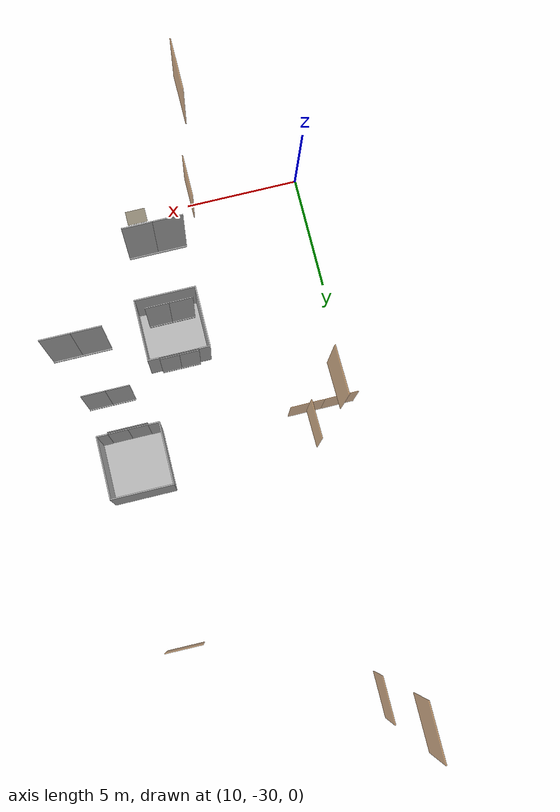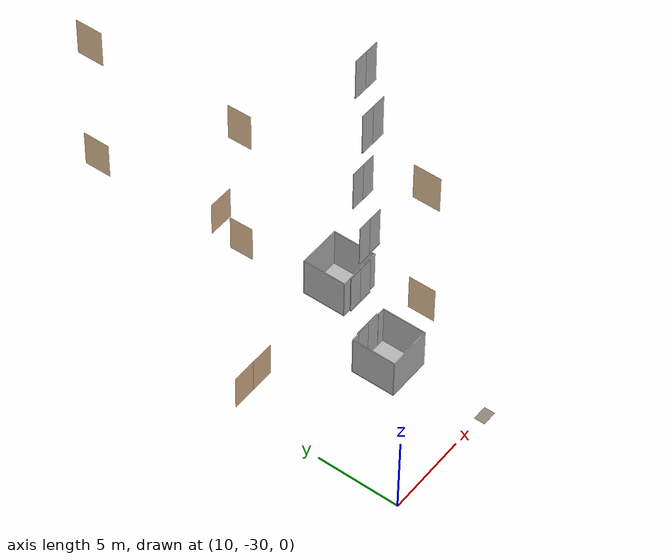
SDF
<sdf version="1.7">
 <world name="sim_world">
  <model name="L1_door2">
   <pose>11.515053553551752 -19.600764056030513 0.0 0 0 -3.1369488994516814</pose>
   <link name="right">
    <pose>0.7374085791900343 0 1.11 0 0 0</pose>
    <visual name="right_visual">
     <geometry><box><size>1.4648171583800687 0.03 2.2</size></box></geometry>
     <material>
      <ambient>0.5 0.25 0 0.6</ambient>
      <diffuse>0.5 0.25 0 0.6</diffuse>
      <pbr><metal><metalness>0.0</metalness></metal></pbr>
     </material>
    </visual>
    <collision name="right_collision">
     <geometry><box><size>1.4648171583800687 0.03 2.2</size></box></geometry>
     <surface><contact><collide_bitmask>0x02</collide_bitmask></contact></surface>
    </collision>
    <inertial>
     <mass>50.0</mass>
     <inertia><ixx>20.17041666666667</ixx><iyy>29.107038781186084</iyy><izz>8.944122114519415</izz></inertia>
    </inertial>
   </link>
   <joint name="right_joint" type="prismatic">
    <parent>world</parent>
    <child>right</child>
    <axis>
     <xyz>1 0 0</xyz>
     <limit><lower>0.0</lower><upper>1.4748171583800687</upper><effort>500.0</effort></limit>
    </axis>
   </joint>
   <link name="left">
    <pose>-0.7374085791900343 0 1.11 0 0 0</pose>
    <visual name="left_visual">
     <geometry><box><size>1.4648171583800687 0.03 2.2</size></box></geometry>
     <material>
      <ambient>0.5 0.25 0 0.6</ambient>
      <diffuse>0.5 0.25 0 0.6</diffuse>
      <pbr><metal><metalness>0.0</metalness></metal></pbr>
     </material>
    </visual>
    <collision name="left_collision">
     <geometry><box><size>1.4648171583800687 0.03 2.2</size></box></geometry>
     <surface><contact><collide_bitmask>0x02</collide_bitmask></contact></surface>
    </collision>
    <inertial>
     <mass>50.0</mass>
     <inertia><ixx>20.17041666666667</ixx><iyy>29.107038781186084</iyy><izz>8.944122114519415</izz></inertia>
    </inertial>
   </link>
   <joint name="left_joint" type="prismatic">
    <parent>world</parent>
    <child>left</child>
    <axis>
     <xyz>1 0 0</xyz>
     <limit><lower>-1.4748171583800687</lower><upper>0.0</upper><effort>500.0</effort></limit>
    </axis>
   </joint>
   <plugin name="register_component" filename="libregister_component.so">
    <component name="Door">
     <v_max_door>0.2</v_max_door>
     <a_max_door>0.2</a_max_door>
     <a_nom_door>0.08</a_nom_door>
     <dx_min_door>0.001</dx_min_door>
     <f_max_door>100.0</f_max_door>
     <ros_interface>true</ros_interface>
     <door name="L1_door2" type="DoubleSlidingDoor" left_joint_name="left_joint" right_joint_name="right_joint"/>
    </component>
   </plugin>
  </model>
  <model name="L1_door4">
   <pose>19.549120677562087 -11.10939551168469 0.0 0 0 -0.009497018345977264</pose>
   <link name="right">
    <pose>0 0 1.11 0 0 0</pose>
    <visual name="right_visual">
     <geometry><box><size>1.5905993122484277 0.03 2.2</size></box></geometry>
     <material>
      <ambient>0.5 0.25 0 0.6</ambient>
      <diffuse>0.5 0.25 0 0.6</diffuse>
      <pbr><metal><metalness>0.0</metalness></metal></pbr>
     </material>
    </visual>
    <collision name="right_collision">
     <geometry><box><size>1.5905993122484277 0.03 2.2</size></box></geometry>
     <surface><contact><collide_bitmask>0x02</collide_bitmask></contact></surface>
    </collision>
    <inertial>
     <mass>50.0</mass>
     <inertia><ixx>20.17041666666667</ixx><iyy>30.70835905052155</iyy><izz>10.545442383854882</izz></inertia>
    </inertial>
   </link>
   <joint name="right_joint" type="revolute">
    <parent>world</parent>
    <child>right</child>
    <axis><xyz>0 0 1</xyz><limit><lower>0</lower><upper>1.57</upper></limit></axis>
    <pose>0.8002996561242138 0 0 0 0 0</pose>
   </joint>
   <plugin name="register_component" filename="libregister_component.so">
    <component name="Door">
     <v_max_door>0.5</v_max_door>
     <a_max_door>0.3</a_max_door>
     <a_nom_door>0.15</a_nom_door>
     <dx_min_door>0.01</dx_min_door>
     <f_max_door>500.0</f_max_door>
     <ros_interface>true</ros_interface>
     <door name="L1_door4" type="SwingDoor" left_joint_name="empty_joint" right_joint_name="right_joint"/>
    </component>
   </plugin>
  </model>
  <model name="L2_door9">
   <pose>13.018848337594756 -17.76158217016259 8.0 0 0 1.5874688733681936</pose>
   <link name="right">
    <pose>0 0 1.11 0 0 0</pose>
    <visual name="right_visual">
     <geometry><box><size>1.382945881897145 0.03 2.2</size></box></geometry>
     <material>
      <ambient>0.5 0.25 0 0.6</ambient>
      <diffuse>0.5 0.25 0 0.6</diffuse>
      <pbr><metal><metalness>0.0</metalness></metal></pbr>
     </material>
    </visual>
    <collision name="right_collision">
     <geometry><box><size>1.382945881897145 0.03 2.2</size></box></geometry>
     <surface><contact><collide_bitmask>0x02</collide_bitmask></contact></surface>
    </collision>
    <inertial>
     <mass>50.0</mass>
     <inertia><ixx>20.17041666666667</ixx><iyy>28.13558046773447</iyy><izz>7.9726638010677995</izz></inertia>
    </inertial>
   </link>
   <joint name="right_joint" type="revolute">
    <parent>world</parent>
    <child>right</child>
    <axis><xyz>0 0 -1</xyz><limit><lower>0</lower><upper>1.57</upper></limit></axis>
    <pose>0.6964729409485725 0 0 0 0 0</pose>
   </joint>
   <plugin name="register_component" filename="libregister_component.so">
    <component name="Door">
     <v_max_door>0.5</v_max_door>
     <a_max_door>0.3</a_max_door>
     <a_nom_door>0.15</a_nom_door>
     <dx_min_door>0.01</dx_min_door>
     <f_max_door>500.0</f_max_door>
     <ros_interface>true</ros_interface>
     <door name="L2_door9" type="SwingDoor" left_joint_name="empty_joint" right_joint_name="right_joint"/>
    </component>
   </plugin>
  </model>
  <model name="L2_door11">
   <pose>13.070832545372092 -8.29507317951618 8.0 0 0 1.571612558028263</pose>
   <link name="right">
    <pose>0 0 1.11 0 0 0</pose>
    <visual name="right_visual">
     <geometry><box><size>1.5950330216253457 0.03 2.2</size></box></geometry>
     <material>
      <ambient>0.5 0.25 0 0.6</ambient>
      <diffuse>0.5 0.25 0 0.6</diffuse>
      <pbr><metal><metalness>0.0</metalness></metal></pbr>
     </material>
    </visual>
    <collision name="right_collision">
     <geometry><box><size>1.5950330216253457 0.03 2.2</size></box></geometry>
     <surface><contact><collide_bitmask>0x02</collide_bitmask></contact></surface>
    </collision>
    <inertial>
     <mass>50.0</mass>
     <inertia><ixx>20.17041666666667</ixx><iyy>30.767209750313672</iyy><izz>10.604293083647002</izz></inertia>
    </inertial>
   </link>
   <joint name="right_joint" type="revolute">
    <parent>world</parent>
    <child>right</child>
    <axis><xyz>0 0 -1</xyz><limit><lower>0</lower><upper>1.57</upper></limit></axis>
    <pose>0.8025165108126728 0 0 0 0 0</pose>
   </joint>
   <plugin name="register_component" filename="libregister_component.so">
    <component name="Door">
     <v_max_door>0.5</v_max_door>
     <a_max_door>0.3</a_max_door>
     <a_nom_door>0.15</a_nom_door>
     <dx_min_door>0.01</dx_min_door>
     <f_max_door>500.0</f_max_door>
     <ros_interface>true</ros_interface>
     <door name="L2_door11" type="SwingDoor" left_joint_name="empty_joint" right_joint_name="right_joint"/>
    </component>
   </plugin>
  </model>
  <model name="L2_door12">
   <pose>15.28470442617677 -27.2761317707633 8.0 0 0 1.571612558028262</pose>
   <link name="right">
    <pose>0 0 1.11 0 0 0</pose>
    <visual name="right_visual">
     <geometry><box><size>1.5658659299508506 0.03 2.2</size></box></geometry>
     <material>
      <ambient>0.5 0.25 0 0.6</ambient>
      <diffuse>0.5 0.25 0 0.6</diffuse>
      <pbr><metal><metalness>0.0</metalness></metal></pbr>
     </material>
    </visual>
    <collision name="right_collision">
     <geometry><box><size>1.5658659299508506 0.03 2.2</size></box></geometry>
     <surface><contact><collide_bitmask>0x02</collide_bitmask></contact></surface>
    </collision>
    <inertial>
     <mass>50.0</mass>
     <inertia><ixx>20.17041666666667</ixx><iyy>30.38306712742018</iyy><izz>10.22015046075351</izz></inertia>
    </inertial>
   </link>
   <joint name="right_joint" type="revolute">
    <parent>world</parent>
    <child>right</child>
    <axis><xyz>0 0 1</xyz><limit><lower>0</lower><upper>1.57</upper></limit></axis>
    <pose>0.7879329649754253 0 0 0 0 0</pose>
   </joint>
   <plugin name="register_component" filename="libregister_component.so">
    <component name="Door">
     <v_max_door>0.5</v_max_door>
     <a_max_door>0.3</a_max_door>
     <a_nom_door>0.15</a_nom_door>
     <dx_min_door>0.01</dx_min_door>
     <f_max_door>500.0</f_max_door>
     <ros_interface>true</ros_interface>
     <door name="L2_door12" type="SwingDoor" left_joint_name="empty_joint" right_joint_name="right_joint"/>
    </component>
   </plugin>
  </model>
  <model name="L3_door9">
   <pose>13.018848337594756 -17.76158217016259 16.0 0 0 1.5874688733681936</pose>
   <link name="right">
    <pose>0 0 1.11 0 0 0</pose>
    <visual name="right_visual">
     <geometry><box><size>1.382945881897145 0.03 2.2</size></box></geometry>
     <material>
      <ambient>0.5 0.25 0 0.6</ambient>
      <diffuse>0.5 0.25 0 0.6</diffuse>
      <pbr><metal><metalness>0.0</metalness></metal></pbr>
     </material>
    </visual>
    <collision name="right_collision">
     <geometry><box><size>1.382945881897145 0.03 2.2</size></box></geometry>
     <surface><contact><collide_bitmask>0x02</collide_bitmask></contact></surface>
    </collision>
    <inertial>
     <mass>50.0</mass>
     <inertia><ixx>20.17041666666667</ixx><iyy>28.13558046773447</iyy><izz>7.9726638010677995</izz></inertia>
    </inertial>
   </link>
   <joint name="right_joint" type="revolute">
    <parent>world</parent>
    <child>right</child>
    <axis><xyz>0 0 -1</xyz><limit><lower>0</lower><upper>1.57</upper></limit></axis>
    <pose>0.6964729409485725 0 0 0 0 0</pose>
   </joint>
   <plugin name="register_component" filename="libregister_component.so">
    <component name="Door">
     <v_max_door>0.5</v_max_door>
     <a_max_door>0.3</a_max_door>
     <a_nom_door>0.15</a_nom_door>
     <dx_min_door>0.01</dx_min_door>
     <f_max_door>500.0</f_max_door>
     <ros_interface>true</ros_interface>
     <door name="L3_door9" type="SwingDoor" left_joint_name="empty_joint" right_joint_name="right_joint"/>
    </component>
   </plugin>
  </model>
  <model name="L3_door11">
   <pose>13.070832545372092 -8.29507317951618 16.0 0 0 1.571612558028263</pose>
   <link name="right">
    <pose>0 0 1.11 0 0 0</pose>
    <visual name="right_visual">
     <geometry><box><size>1.5950330216253457 0.03 2.2</size></box></geometry>
     <material>
      <ambient>0.5 0.25 0 0.6</ambient>
      <diffuse>0.5 0.25 0 0.6</diffuse>
      <pbr><metal><metalness>0.0</metalness></metal></pbr>
     </material>
    </visual>
    <collision name="right_collision">
     <geometry><box><size>1.5950330216253457 0.03 2.2</size></box></geometry>
     <surface><contact><collide_bitmask>0x02</collide_bitmask></contact></surface>
    </collision>
    <inertial>
     <mass>50.0</mass>
     <inertia><ixx>20.17041666666667</ixx><iyy>30.767209750313672</iyy><izz>10.604293083647002</izz></inertia>
    </inertial>
   </link>
   <joint name="right_joint" type="revolute">
    <parent>world</parent>
    <child>right</child>
    <axis><xyz>0 0 -1</xyz><limit><lower>0</lower><upper>1.57</upper></limit></axis>
    <pose>0.8025165108126728 0 0 0 0 0</pose>
   </joint>
   <plugin name="register_component" filename="libregister_component.so">
    <component name="Door">
     <v_max_door>0.5</v_max_door>
     <a_max_door>0.3</a_max_door>
     <a_nom_door>0.15</a_nom_door>
     <dx_min_door>0.01</dx_min_door>
     <f_max_door>500.0</f_max_door>
     <ros_interface>true</ros_interface>
     <door name="L3_door11" type="SwingDoor" left_joint_name="empty_joint" right_joint_name="right_joint"/>
    </component>
   </plugin>
  </model>
  <model name="L3_door12">
   <pose>15.28470442617677 -27.2761317707633 16.0 0 0 1.571612558028262</pose>
   <link name="right">
    <pose>0 0 1.11 0 0 0</pose>
    <visual name="right_visual">
     <geometry><box><size>1.5658659299508506 0.03 2.2</size></box></geometry>
     <material>
      <ambient>0.5 0.25 0 0.6</ambient>
      <diffuse>0.5 0.25 0 0.6</diffuse>
      <pbr><metal><metalness>0.0</metalness></metal></pbr>
     </material>
    </visual>
    <collision name="right_collision">
     <geometry><box><size>1.5658659299508506 0.03 2.2</size></box></geometry>
     <surface><contact><collide_bitmask>0x02</collide_bitmask></contact></surface>
    </collision>
    <inertial>
     <mass>50.0</mass>
     <inertia><ixx>20.17041666666667</ixx><iyy>30.38306712742018</iyy><izz>10.22015046075351</izz></inertia>
    </inertial>
   </link>
   <joint name="right_joint" type="revolute">
    <parent>world</parent>
    <child>right</child>
    <axis><xyz>0 0 1</xyz><limit><lower>0</lower><upper>1.57</upper></limit></axis>
    <pose>0.7879329649754253 0 0 0 0 0</pose>
   </joint>
   <plugin name="register_component" filename="libregister_component.so">
    <component name="Door">
     <v_max_door>0.5</v_max_door>
     <a_max_door>0.3</a_max_door>
     <a_nom_door>0.15</a_nom_door>
     <dx_min_door>0.01</dx_min_door>
     <f_max_door>500.0</f_max_door>
     <ros_interface>true</ros_interface>
     <door name="L3_door12" type="SwingDoor" left_joint_name="empty_joint" right_joint_name="right_joint"/>
    </component>
   </plugin>
  </model>
  <model name="ShaftDoor_Lift1_L1_lift1_door">
   <pose>19.766468308668816 -20.331265422387034 0.0 0 0 0.0</pose>
   <link name="right_door">
    <pose>0.425 0 1.25 0 0 0</pose>
    <visual name="right_door_visual">
     <geometry><box><size>0.85 0.03 2.5</size></box></geometry>
     <material>
      <ambient>0.5 0.5 0.5 1</ambient>
      <diffuse>0.7 0.7 0.7 1</diffuse>
      <specular>0.6 0.6 0.6 1</specular>
      <emissive>0.1 0.1 0.1 1</emissive>
     </material>
    </visual>
   </link>
   <link name="left_door">
    <pose>-0.425 0 1.25 0 0 0</pose>
    <visual name="left_door_visual">
     <geometry><box><size>0.85 0.03 2.5</size></box></geometry>
     <material>
      <ambient>0.5 0.5 0.5 1</ambient>
      <diffuse>0.7 0.7 0.7 1</diffuse>
      <specular>0.6 0.6 0.6 1</specular>
      <emissive>0.1 0.1 0.1 1</emissive>
     </material>
    </visual>
   </link>
   <joint name="right_joint" type="prismatic">
    <parent>world</parent>
    <child>right_door</child>
    <axis><xyz>1 0 0</xyz><limit><lower>0</lower><upper>0.85</upper></limit></axis>
   </joint>
   <joint name="left_joint" type="prismatic">
    <parent>world</parent>
    <child>left_door</child>
    <axis><xyz>1 0 0</xyz><limit><lower>-0.85</lower><upper>0</upper></limit></axis>
   </joint>
   <link name="ramp">
    <pose>0 0 -0.025 0 0 0</pose>
    <visual name="ramp_visual">
     <geometry><box><size>1.7 0.1 0.05</size></box></geometry>
     <material>
      <ambient>0.5 0.5 0.5 1</ambient>
      <diffuse>0.7 0.7 0.7 1</diffuse>
      <specular>0.6 0.6 0.6 1</specular>
      <emissive>0.1 0.1 0.1 1</emissive>
     </material>
    </visual>
   </link>
   <joint name="ramp_joint" type="fixed"><parent>world</parent><child>ramp</child></joint>
   <plugin name="register_component" filename="libregister_component.so">
    <component name="Door">
     <v_max_door>0.3</v_max_door>
     <a_max_door>0.2</a_max_door>
     <a_nom_door>0.1</a_nom_door>
     <dx_min_door>0.0001</dx_min_door>
     <f_max_door>35.0</f_max_door>
     <door left_joint_name="left_joint" name="ShaftDoor_Lift1_L1_lift1_door" right_joint_name="right_joint" type="DoubleSlidingDoor"/>
    </component>
   </plugin>
  </model>
  <model name="ShaftDoor_Lift1_L2_lift1_door">
   <pose>19.766468308668816 -20.331265422387034 8.0 0 0 0.0</pose>
   <link name="right_door">
    <pose>0.425 0 1.25 0 0 0</pose>
    <visual name="right_door_visual">
     <geometry><box><size>0.85 0.03 2.5</size></box></geometry>
     <material>
      <ambient>0.5 0.5 0.5 1</ambient>
      <diffuse>0.7 0.7 0.7 1</diffuse>
      <specular>0.6 0.6 0.6 1</specular>
      <emissive>0.1 0.1 0.1 1</emissive>
     </material>
    </visual>
   </link>
   <link name="left_door">
    <pose>-0.425 0 1.25 0 0 0</pose>
    <visual name="left_door_visual">
     <geometry><box><size>0.85 0.03 2.5</size></box></geometry>
     <material>
      <ambient>0.5 0.5 0.5 1</ambient>
      <diffuse>0.7 0.7 0.7 1</diffuse>
      <specular>0.6 0.6 0.6 1</specular>
      <emissive>0.1 0.1 0.1 1</emissive>
     </material>
    </visual>
   </link>
   <joint name="right_joint" type="prismatic">
    <parent>world</parent>
    <child>right_door</child>
    <axis><xyz>1 0 0</xyz><limit><lower>0</lower><upper>0.85</upper></limit></axis>
   </joint>
   <joint name="left_joint" type="prismatic">
    <parent>world</parent>
    <child>left_door</child>
    <axis><xyz>1 0 0</xyz><limit><lower>-0.85</lower><upper>0</upper></limit></axis>
   </joint>
   <link name="ramp">
    <pose>0 0 -0.025 0 0 0</pose>
    <visual name="ramp_visual">
     <geometry><box><size>1.7 0.1 0.05</size></box></geometry>
     <material>
      <ambient>0.5 0.5 0.5 1</ambient>
      <diffuse>0.7 0.7 0.7 1</diffuse>
      <specular>0.6 0.6 0.6 1</specular>
      <emissive>0.1 0.1 0.1 1</emissive>
     </material>
    </visual>
   </link>
   <joint name="ramp_joint" type="fixed"><parent>world</parent><child>ramp</child></joint>
   <plugin name="register_component" filename="libregister_component.so">
    <component name="Door">
     <v_max_door>0.3</v_max_door>
     <a_max_door>0.2</a_max_door>
     <a_nom_door>0.1</a_nom_door>
     <dx_min_door>0.0001</dx_min_door>
     <f_max_door>35.0</f_max_door>
     <door left_joint_name="left_joint" name="ShaftDoor_Lift1_L2_lift1_door" right_joint_name="right_joint" type="DoubleSlidingDoor"/>
    </component>
   </plugin>
  </model>
  <model name="ShaftDoor_Lift1_L3_lift1_door">
   <pose>19.766468308668816 -20.331265422387034 16.0 0 0 0.0</pose>
   <link name="right_door">
    <pose>0.425 0 1.25 0 0 0</pose>
    <visual name="right_door_visual">
     <geometry><box><size>0.85 0.03 2.5</size></box></geometry>
     <material>
      <ambient>0.5 0.5 0.5 1</ambient>
      <diffuse>0.7 0.7 0.7 1</diffuse>
      <specular>0.6 0.6 0.6 1</specular>
      <emissive>0.1 0.1 0.1 1</emissive>
     </material>
    </visual>
   </link>
   <link name="left_door">
    <pose>-0.425 0 1.25 0 0 0</pose>
    <visual name="left_door_visual">
     <geometry><box><size>0.85 0.03 2.5</size></box></geometry>
     <material>
      <ambient>0.5 0.5 0.5 1</ambient>
      <diffuse>0.7 0.7 0.7 1</diffuse>
      <specular>0.6 0.6 0.6 1</specular>
      <emissive>0.1 0.1 0.1 1</emissive>
     </material>
    </visual>
   </link>
   <joint name="right_joint" type="prismatic">
    <parent>world</parent>
    <child>right_door</child>
    <axis><xyz>1 0 0</xyz><limit><lower>0</lower><upper>0.85</upper></limit></axis>
   </joint>
   <joint name="left_joint" type="prismatic">
    <parent>world</parent>
    <child>left_door</child>
    <axis><xyz>1 0 0</xyz><limit><lower>-0.85</lower><upper>0</upper></limit></axis>
   </joint>
   <link name="ramp">
    <pose>0 0 -0.025 0 0 0</pose>
    <visual name="ramp_visual">
     <geometry><box><size>1.7 0.1 0.05</size></box></geometry>
     <material>
      <ambient>0.5 0.5 0.5 1</ambient>
      <diffuse>0.7 0.7 0.7 1</diffuse>
      <specular>0.6 0.6 0.6 1</specular>
      <emissive>0.1 0.1 0.1 1</emissive>
     </material>
    </visual>
   </link>
   <joint name="ramp_joint" type="fixed"><parent>world</parent><child>ramp</child></joint>
   <plugin name="register_component" filename="libregister_component.so">
    <component name="Door">
     <v_max_door>0.3</v_max_door>
     <a_max_door>0.2</a_max_door>
     <a_nom_door>0.1</a_nom_door>
     <dx_min_door>0.0001</dx_min_door>
     <f_max_door>35.0</f_max_door>
     <door left_joint_name="left_joint" name="ShaftDoor_Lift1_L3_lift1_door" right_joint_name="right_joint" type="DoubleSlidingDoor"/>
    </component>
   </plugin>
  </model>
  <model name="Lift1">
   <link name="platform">
    <inertial>
     <mass>1200</mass>
     <inertia><ixx>729.2500000000001</ixx><iyy>729.2500000000001</iyy><izz>1458.0000000000002</izz></inertia>
    </inertial>
    <visual name="floor_visual">
     <pose>0 0 -0.025 0 0 0</pose>
     <geometry><box><size>2.7 2.7 0.05</size></box></geometry>
     <material>
      <ambient>0.5 0.5 0.5 1</ambient>
      <diffuse>0.7 0.7 0.7 1</diffuse>
      <specular>0.6 0.6 0.6 1</specular>
      <emissive>0.1 0.1 0.1 1</emissive>
     </material>
    </visual>
    <collision name="floor_collision">
     <pose>0 0 -0.025 0 0 0</pose>
     <geometry><box><size>2.7 3.0 0.05</size></box></geometry>
     <surface><contact><collide_bitmask>0x01</collide_bitmask></contact></surface>
    </collision>
    <visual name="frontwall1_visual">
     <pose>0.0 1.3250000000000002 1.25 0 0 0</pose>
     <geometry><box><size>2.7 0.05 2.5</size></box></geometry>
     <material>
      <ambient>0.5 0.5 0.5 1</ambient>
      <diffuse>0.7 0.7 0.7 1</diffuse>
      <specular>0.6 0.6 0.6 1</specular>
      <emissive>0.1 0.1 0.1 1</emissive>
     </material>
    </visual>
    <visual name="backwall1_visual">
     <pose>-1.1 -1.3250000000000002 1.25 0 0 0</pose>
     <geometry><box><size>0.5000000000000001 0.05 2.5</size></box></geometry>
     <material>
      <ambient>0.5 0.5 0.5 1</ambient>
      <diffuse>0.7 0.7 0.7 1</diffuse>
      <specular>0.6 0.6 0.6 1</specular>
      <emissive>0.1 0.1 0.1 1</emissive>
     </material>
    </visual>
    <visual name="backwall2_visual">
     <pose>1.1 -1.3250000000000002 1.25 0 0 0</pose>
     <geometry><box><size>0.5000000000000001 0.05 2.5</size></box></geometry>
     <material>
      <ambient>0.5 0.5 0.5 1</ambient>
      <diffuse>0.7 0.7 0.7 1</diffuse>
      <specular>0.6 0.6 0.6 1</specular>
      <emissive>0.1 0.1 0.1 1</emissive>
     </material>
    </visual>
    <visual name="leftwall1_visual">
     <pose>-1.3250000000000002 0.0 1.25 0 0 1.5707963267948966</pose>
     <geometry><box><size>2.6 0.05 2.5</size></box></geometry>
     <material>
      <ambient>0.5 0.5 0.5 1</ambient>
      <diffuse>0.7 0.7 0.7 1</diffuse>
      <specular>0.6 0.6 0.6 1</specular>
      <emissive>0.1 0.1 0.1 1</emissive>
     </material>
    </visual>
    <visual name="rightwall1_visual">
     <pose>1.3250000000000002 0.0 1.25 0 0 1.5707963267948966</pose>
     <geometry><box><size>2.6 0.05 2.5</size></box></geometry>
     <material>
      <ambient>0.5 0.5 0.5 1</ambient>
      <diffuse>0.7 0.7 0.7 1</diffuse>
      <specular>0.6 0.6 0.6 1</specular>
      <emissive>0.1 0.1 0.1 1</emissive>
     </material>
    </visual>
   </link>
   <joint name="cabin_joint" type="prismatic">
    <parent>world</parent>
    <child>platform</child>
    <axis><xyz>0 0 1</xyz></axis>
   </joint>
   <model name="CabinDoor_Lift1_lift1_door">
    <pose>0.0 -1.3250000000000002 0 0 0 0.0</pose>
    <link name="right_door">
     <pose>0.425 0 1.25 0 0 0</pose>
     <visual name="right_door_visual">
      <geometry><box><size>0.85 0.03 2.5</size></box></geometry>
      <material>
       <ambient>0.5 0.5 0.5 1</ambient>
       <diffuse>0.7 0.7 0.7 1</diffuse>
       <specular>0.6 0.6 0.6 1</specular>
       <emissive>0.1 0.1 0.1 1</emissive>
      </material>
     </visual>
    </link>
    <link name="left_door">
     <pose>-0.425 0 1.25 0 0 0</pose>
     <visual name="left_door_visual">
      <geometry><box><size>0.85 0.03 2.5</size></box></geometry>
      <material>
       <ambient>0.5 0.5 0.5 1</ambient>
       <diffuse>0.7 0.7 0.7 1</diffuse>
       <specular>0.6 0.6 0.6 1</specular>
       <emissive>0.1 0.1 0.1 1</emissive>
      </material>
     </visual>
    </link>
    <plugin name="register_component" filename="libregister_component.so">
     <component name="Door">
      <v_max_door>0.3</v_max_door>
      <a_max_door>0.2</a_max_door>
      <a_nom_door>0.1</a_nom_door>
      <dx_min_door>0.0001</dx_min_door>
      <f_max_door>35.0</f_max_door>
      <door left_joint_name="CabinDoor_Lift1_lift1_door_left_joint" name="CabinDoor_Lift1_lift1_door" right_joint_name="CabinDoor_Lift1_lift1_door_right_joint" type="DoubleSlidingDoor"/>
     </component>
    </plugin>
   </model>
   <joint name="CabinDoor_Lift1_lift1_door_right_joint" type="prismatic">
    <parent>platform</parent>
    <child>CabinDoor_Lift1_lift1_door::right_door</child>
    <axis><xyz>1 0 0</xyz><limit><lower>0</lower><upper>0.85</upper></limit></axis>
   </joint>
   <joint name="CabinDoor_Lift1_lift1_door_left_joint" type="prismatic">
    <parent>platform</parent>
    <child>CabinDoor_Lift1_lift1_door::left_door</child>
    <axis><xyz>1 0 0</xyz><limit><lower>-0.85</lower><upper>0</upper></limit></axis>
   </joint>
   <plugin name="register_component" filename="libregister_component.so">
    <component name="Lift">
     <lift_name>Lift1</lift_name>
     <floor name="L1" elevation="0.0">
      <door_pair cabin_door="CabinDoor_Lift1_lift1_door" shaft_door="ShaftDoor_Lift1_L1_lift1_door"/>
     </floor>
     <floor name="L2" elevation="8.0">
      <door_pair cabin_door="CabinDoor_Lift1_lift1_door" shaft_door="ShaftDoor_Lift1_L2_lift1_door"/>
     </floor>
     <floor name="L3" elevation="16.0">
      <door_pair cabin_door="CabinDoor_Lift1_lift1_door" shaft_door="ShaftDoor_Lift1_L3_lift1_door"/>
     </floor>
     <initial_floor>L1</initial_floor>
     <v_max_cabin>2.0</v_max_cabin>
     <a_max_cabin>1.2</a_max_cabin>
     <a_nom_cabin>1.0</a_nom_cabin>
     <dx_min_cabin>0.001</dx_min_cabin>
     <f_max_cabin>25323.0</f_max_cabin>
     <cabin_joint_name>cabin_joint</cabin_joint_name>
    </component>
   </plugin>
   <pose>19.766468308668816 -18.931265422387035 0 0 0 0.0</pose>
  </model>
  <model name="ShaftDoor_Lift2_L1_lift2_door">
   <pose>16.982458687729547 -22.82088370217165 0.0 0 0 0.0</pose>
   <link name="right_door">
    <pose>0.425 0 1.25 0 0 0</pose>
    <visual name="right_door_visual">
     <geometry><box><size>0.85 0.03 2.5</size></box></geometry>
     <material>
      <ambient>0.5 0.5 0.5 1</ambient>
      <diffuse>0.7 0.7 0.7 1</diffuse>
      <specular>0.6 0.6 0.6 1</specular>
      <emissive>0.1 0.1 0.1 1</emissive>
     </material>
    </visual>
   </link>
   <link name="left_door">
    <pose>-0.425 0 1.25 0 0 0</pose>
    <visual name="left_door_visual">
     <geometry><box><size>0.85 0.03 2.5</size></box></geometry>
     <material>
      <ambient>0.5 0.5 0.5 1</ambient>
      <diffuse>0.7 0.7 0.7 1</diffuse>
      <specular>0.6 0.6 0.6 1</specular>
      <emissive>0.1 0.1 0.1 1</emissive>
     </material>
    </visual>
   </link>
   <joint name="right_joint" type="prismatic">
    <parent>world</parent>
    <child>right_door</child>
    <axis><xyz>1 0 0</xyz><limit><lower>0</lower><upper>0.85</upper></limit></axis>
   </joint>
   <joint name="left_joint" type="prismatic">
    <parent>world</parent>
    <child>left_door</child>
    <axis><xyz>1 0 0</xyz><limit><lower>-0.85</lower><upper>0</upper></limit></axis>
   </joint>
   <link name="ramp">
    <pose>0 0 -0.025 0 0 0</pose>
    <visual name="ramp_visual">
     <geometry><box><size>1.7 0.1 0.05</size></box></geometry>
     <material>
      <ambient>0.5 0.5 0.5 1</ambient>
      <diffuse>0.7 0.7 0.7 1</diffuse>
      <specular>0.6 0.6 0.6 1</specular>
      <emissive>0.1 0.1 0.1 1</emissive>
     </material>
    </visual>
   </link>
   <joint name="ramp_joint" type="fixed"><parent>world</parent><child>ramp</child></joint>
   <plugin name="register_component" filename="libregister_component.so">
    <component name="Door">
     <v_max_door>0.3</v_max_door>
     <a_max_door>0.2</a_max_door>
     <a_nom_door>0.1</a_nom_door>
     <dx_min_door>0.0001</dx_min_door>
     <f_max_door>35.0</f_max_door>
     <door left_joint_name="left_joint" name="ShaftDoor_Lift2_L1_lift2_door" right_joint_name="right_joint" type="DoubleSlidingDoor"/>
    </component>
   </plugin>
  </model>
  <model name="ShaftDoor_Lift2_L2_lift2_door">
   <pose>16.982458687729547 -22.82088370217165 8.0 0 0 0.0</pose>
   <link name="right_door">
    <pose>0.425 0 1.25 0 0 0</pose>
    <visual name="right_door_visual">
     <geometry><box><size>0.85 0.03 2.5</size></box></geometry>
     <material>
      <ambient>0.5 0.5 0.5 1</ambient>
      <diffuse>0.7 0.7 0.7 1</diffuse>
      <specular>0.6 0.6 0.6 1</specular>
      <emissive>0.1 0.1 0.1 1</emissive>
     </material>
    </visual>
   </link>
   <link name="left_door">
    <pose>-0.425 0 1.25 0 0 0</pose>
    <visual name="left_door_visual">
     <geometry><box><size>0.85 0.03 2.5</size></box></geometry>
     <material>
      <ambient>0.5 0.5 0.5 1</ambient>
      <diffuse>0.7 0.7 0.7 1</diffuse>
      <specular>0.6 0.6 0.6 1</specular>
      <emissive>0.1 0.1 0.1 1</emissive>
     </material>
    </visual>
   </link>
   <joint name="right_joint" type="prismatic">
    <parent>world</parent>
    <child>right_door</child>
    <axis><xyz>1 0 0</xyz><limit><lower>0</lower><upper>0.85</upper></limit></axis>
   </joint>
   <joint name="left_joint" type="prismatic">
    <parent>world</parent>
    <child>left_door</child>
    <axis><xyz>1 0 0</xyz><limit><lower>-0.85</lower><upper>0</upper></limit></axis>
   </joint>
   <link name="ramp">
    <pose>0 0 -0.025 0 0 0</pose>
    <visual name="ramp_visual">
     <geometry><box><size>1.7 0.1 0.05</size></box></geometry>
     <material>
      <ambient>0.5 0.5 0.5 1</ambient>
      <diffuse>0.7 0.7 0.7 1</diffuse>
      <specular>0.6 0.6 0.6 1</specular>
      <emissive>0.1 0.1 0.1 1</emissive>
     </material>
    </visual>
   </link>
   <joint name="ramp_joint" type="fixed"><parent>world</parent><child>ramp</child></joint>
   <plugin name="register_component" filename="libregister_component.so">
    <component name="Door">
     <v_max_door>0.3</v_max_door>
     <a_max_door>0.2</a_max_door>
     <a_nom_door>0.1</a_nom_door>
     <dx_min_door>0.0001</dx_min_door>
     <f_max_door>35.0</f_max_door>
     <door left_joint_name="left_joint" name="ShaftDoor_Lift2_L2_lift2_door" right_joint_name="right_joint" type="DoubleSlidingDoor"/>
    </component>
   </plugin>
  </model>
  <model name="ShaftDoor_Lift2_L3_lift2_door">
   <pose>16.982458687729547 -22.82088370217165 16.0 0 0 0.0</pose>
   <link name="right_door">
    <pose>0.425 0 1.25 0 0 0</pose>
    <visual name="right_door_visual">
     <geometry><box><size>0.85 0.03 2.5</size></box></geometry>
     <material>
      <ambient>0.5 0.5 0.5 1</ambient>
      <diffuse>0.7 0.7 0.7 1</diffuse>
      <specular>0.6 0.6 0.6 1</specular>
      <emissive>0.1 0.1 0.1 1</emissive>
     </material>
    </visual>
   </link>
   <link name="left_door">
    <pose>-0.425 0 1.25 0 0 0</pose>
    <visual name="left_door_visual">
     <geometry><box><size>0.85 0.03 2.5</size></box></geometry>
     <material>
      <ambient>0.5 0.5 0.5 1</ambient>
      <diffuse>0.7 0.7 0.7 1</diffuse>
      <specular>0.6 0.6 0.6 1</specular>
      <emissive>0.1 0.1 0.1 1</emissive>
     </material>
    </visual>
   </link>
   <joint name="right_joint" type="prismatic">
    <parent>world</parent>
    <child>right_door</child>
    <axis><xyz>1 0 0</xyz><limit><lower>0</lower><upper>0.85</upper></limit></axis>
   </joint>
   <joint name="left_joint" type="prismatic">
    <parent>world</parent>
    <child>left_door</child>
    <axis><xyz>1 0 0</xyz><limit><lower>-0.85</lower><upper>0</upper></limit></axis>
   </joint>
   <link name="ramp">
    <pose>0 0 -0.025 0 0 0</pose>
    <visual name="ramp_visual">
     <geometry><box><size>1.7 0.1 0.05</size></box></geometry>
     <material>
      <ambient>0.5 0.5 0.5 1</ambient>
      <diffuse>0.7 0.7 0.7 1</diffuse>
      <specular>0.6 0.6 0.6 1</specular>
      <emissive>0.1 0.1 0.1 1</emissive>
     </material>
    </visual>
   </link>
   <joint name="ramp_joint" type="fixed"><parent>world</parent><child>ramp</child></joint>
   <plugin name="register_component" filename="libregister_component.so">
    <component name="Door">
     <v_max_door>0.3</v_max_door>
     <a_max_door>0.2</a_max_door>
     <a_nom_door>0.1</a_nom_door>
     <dx_min_door>0.0001</dx_min_door>
     <f_max_door>35.0</f_max_door>
     <door left_joint_name="left_joint" name="ShaftDoor_Lift2_L3_lift2_door" right_joint_name="right_joint" type="DoubleSlidingDoor"/>
    </component>
   </plugin>
  </model>
  <model name="Lift2">
   <link name="platform">
    <inertial>
     <mass>1200</mass>
     <inertia><ixx>729.2500000000001</ixx><iyy>729.2500000000001</iyy><izz>1458.0000000000002</izz></inertia>
    </inertial>
    <visual name="floor_visual">
     <pose>0 0 -0.025 0 0 0</pose>
     <geometry><box><size>2.7 2.7 0.05</size></box></geometry>
     <material>
      <ambient>0.5 0.5 0.5 1</ambient>
      <diffuse>0.7 0.7 0.7 1</diffuse>
      <specular>0.6 0.6 0.6 1</specular>
      <emissive>0.1 0.1 0.1 1</emissive>
     </material>
    </visual>
    <collision name="floor_collision">
     <pose>0 0 -0.025 0 0 0</pose>
     <geometry><box><size>2.7 3.0 0.05</size></box></geometry>
     <surface><contact><collide_bitmask>0x01</collide_bitmask></contact></surface>
    </collision>
    <visual name="frontwall1_visual">
     <pose>-1.1 1.3250000000000002 1.25 0 0 0</pose>
     <geometry><box><size>0.5000000000000001 0.05 2.5</size></box></geometry>
     <material>
      <ambient>0.5 0.5 0.5 1</ambient>
      <diffuse>0.7 0.7 0.7 1</diffuse>
      <specular>0.6 0.6 0.6 1</specular>
      <emissive>0.1 0.1 0.1 1</emissive>
     </material>
    </visual>
    <visual name="frontwall2_visual">
     <pose>1.1 1.3250000000000002 1.25 0 0 0</pose>
     <geometry><box><size>0.5000000000000001 0.05 2.5</size></box></geometry>
     <material>
      <ambient>0.5 0.5 0.5 1</ambient>
      <diffuse>0.7 0.7 0.7 1</diffuse>
      <specular>0.6 0.6 0.6 1</specular>
      <emissive>0.1 0.1 0.1 1</emissive>
     </material>
    </visual>
    <visual name="backwall1_visual">
     <pose>0.0 -1.3250000000000002 1.25 0 0 0</pose>
     <geometry><box><size>2.7 0.05 2.5</size></box></geometry>
     <material>
      <ambient>0.5 0.5 0.5 1</ambient>
      <diffuse>0.7 0.7 0.7 1</diffuse>
      <specular>0.6 0.6 0.6 1</specular>
      <emissive>0.1 0.1 0.1 1</emissive>
     </material>
    </visual>
    <visual name="leftwall1_visual">
     <pose>-1.3250000000000002 0.0 1.25 0 0 1.5707963267948966</pose>
     <geometry><box><size>2.6 0.05 2.5</size></box></geometry>
     <material>
      <ambient>0.5 0.5 0.5 1</ambient>
      <diffuse>0.7 0.7 0.7 1</diffuse>
      <specular>0.6 0.6 0.6 1</specular>
      <emissive>0.1 0.1 0.1 1</emissive>
     </material>
    </visual>
    <visual name="rightwall1_visual">
     <pose>1.3250000000000002 0.0 1.25 0 0 1.5707963267948966</pose>
     <geometry><box><size>2.6 0.05 2.5</size></box></geometry>
     <material>
      <ambient>0.5 0.5 0.5 1</ambient>
      <diffuse>0.7 0.7 0.7 1</diffuse>
      <specular>0.6 0.6 0.6 1</specular>
      <emissive>0.1 0.1 0.1 1</emissive>
     </material>
    </visual>
   </link>
   <joint name="cabin_joint" type="prismatic">
    <parent>world</parent>
    <child>platform</child>
    <axis><xyz>0 0 1</xyz></axis>
   </joint>
   <model name="CabinDoor_Lift2_lift2_door">
    <pose>0.0 1.3250000000000002 0 0 0 0.0</pose>
    <link name="right_door">
     <pose>0.425 0 1.25 0 0 0</pose>
     <visual name="right_door_visual">
      <geometry><box><size>0.85 0.03 2.5</size></box></geometry>
      <material>
       <ambient>0.5 0.5 0.5 1</ambient>
       <diffuse>0.7 0.7 0.7 1</diffuse>
       <specular>0.6 0.6 0.6 1</specular>
       <emissive>0.1 0.1 0.1 1</emissive>
      </material>
     </visual>
    </link>
    <link name="left_door">
     <pose>-0.425 0 1.25 0 0 0</pose>
     <visual name="left_door_visual">
      <geometry><box><size>0.85 0.03 2.5</size></box></geometry>
      <material>
       <ambient>0.5 0.5 0.5 1</ambient>
       <diffuse>0.7 0.7 0.7 1</diffuse>
       <specular>0.6 0.6 0.6 1</specular>
       <emissive>0.1 0.1 0.1 1</emissive>
      </material>
     </visual>
    </link>
    <plugin name="register_component" filename="libregister_component.so">
     <component name="Door">
      <v_max_door>0.3</v_max_door>
      <a_max_door>0.2</a_max_door>
      <a_nom_door>0.1</a_nom_door>
      <dx_min_door>0.0001</dx_min_door>
      <f_max_door>35.0</f_max_door>
      <door left_joint_name="CabinDoor_Lift2_lift2_door_left_joint" name="CabinDoor_Lift2_lift2_door" right_joint_name="CabinDoor_Lift2_lift2_door_right_joint" type="DoubleSlidingDoor"/>
     </component>
    </plugin>
   </model>
   <joint name="CabinDoor_Lift2_lift2_door_right_joint" type="prismatic">
    <parent>platform</parent>
    <child>CabinDoor_Lift2_lift2_door::right_door</child>
    <axis><xyz>1 0 0</xyz><limit><lower>0</lower><upper>0.85</upper></limit></axis>
   </joint>
   <joint name="CabinDoor_Lift2_lift2_door_left_joint" type="prismatic">
    <parent>platform</parent>
    <child>CabinDoor_Lift2_lift2_door::left_door</child>
    <axis><xyz>1 0 0</xyz><limit><lower>-0.85</lower><upper>0</upper></limit></axis>
   </joint>
   <plugin name="register_component" filename="libregister_component.so">
    <component name="Lift">
     <lift_name>Lift2</lift_name>
     <floor name="L1" elevation="0.0">
      <door_pair cabin_door="CabinDoor_Lift2_lift2_door" shaft_door="ShaftDoor_Lift2_L1_lift2_door"/>
     </floor>
     <floor name="L2" elevation="8.0">
      <door_pair cabin_door="CabinDoor_Lift2_lift2_door" shaft_door="ShaftDoor_Lift2_L2_lift2_door"/>
     </floor>
     <floor name="L3" elevation="16.0">
      <door_pair cabin_door="CabinDoor_Lift2_lift2_door" shaft_door="ShaftDoor_Lift2_L3_lift2_door"/>
     </floor>
     <initial_floor>L1</initial_floor>
     <v_max_cabin>2.0</v_max_cabin>
     <a_max_cabin>1.2</a_max_cabin>
     <a_nom_cabin>1.0</a_nom_cabin>
     <dx_min_cabin>0.001</dx_min_cabin>
     <f_max_cabin>25323.0</f_max_cabin>
     <cabin_joint_name>cabin_joint</cabin_joint_name>
    </component>
   </plugin>
   <pose>16.982458687729547 -24.220883702171648 0 0 0 0.0</pose>
  </model>
  <model name="semantic_distractor_tile">
   <static>true</static>
   <pose>17.4014 -30.094 0.005 0 0 0</pose>
   <link name="surface">
    <visual name="visual">
     <geometry><box><size>0.9 0.65 0.012</size></box></geometry>
     <material><ambient>0.55 0.52 0.45 1</ambient><diffuse>0.55 0.52 0.45 1</diffuse></material>
    </visual>
   </link>
  </model>
  <model name="phase5_warmup_camera_6">
   <static>true</static>
   <pose>18.904511537925384 -30.39295660773533 0.15 0 0 1.9634954084936207</pose>
   <link name="link">
    <sensor name="rgbd_camera" type="rgbd_camera">
     <always_on>true</always_on>
     <update_rate>5</update_rate>
     <topic>/phase5/warmup/6</topic>
     <gz_frame_id>phase5_warmup_6_optical</gz_frame_id>
     <camera>
      <horizontal_fov>1.8</horizontal_fov>
      <image><width>640</width><height>480</height><format>R8G8B8</format></image>
      <clip><near>0.15</near><far>5.0</far></clip>
     </camera>
     <visualize>false</visualize>
    </sensor>
   </link>
  </model>
 </world>
</sdf>
